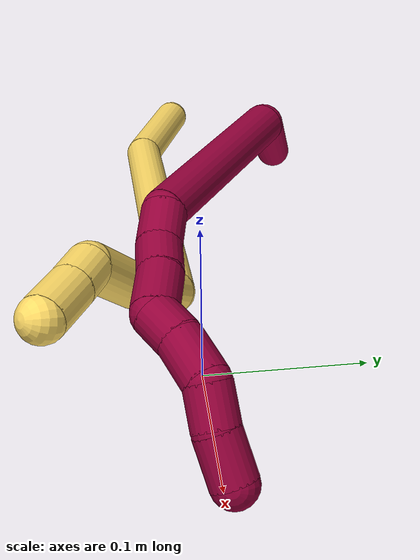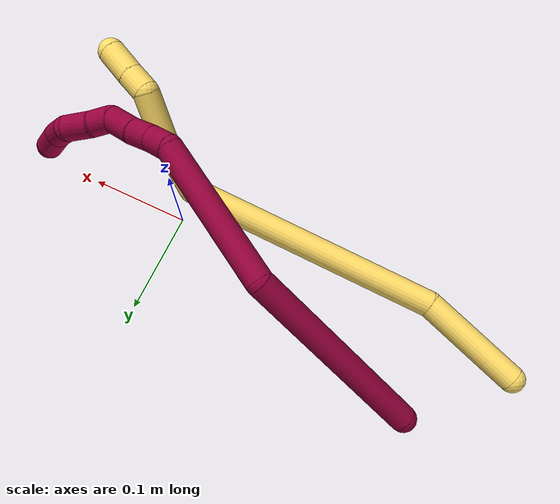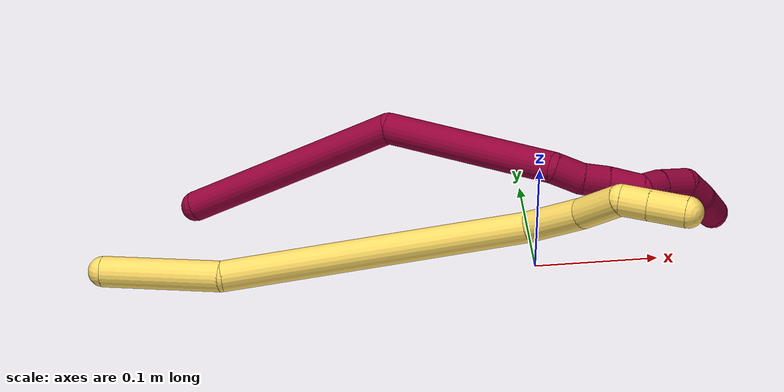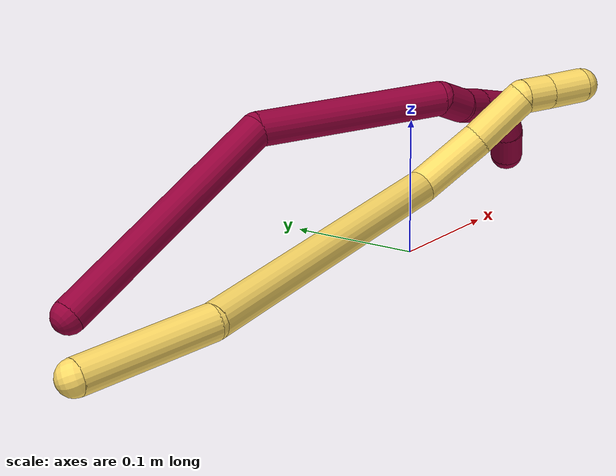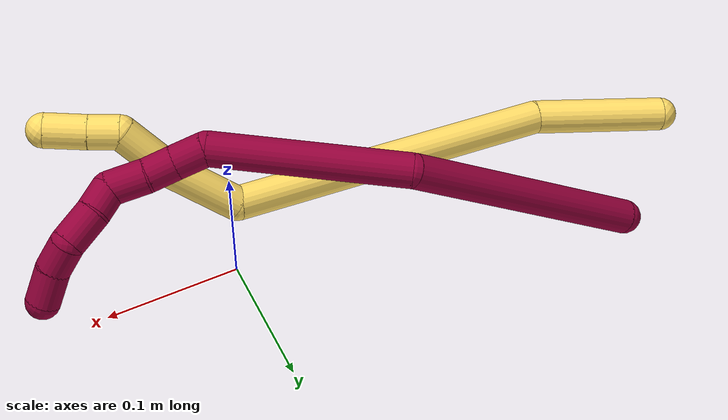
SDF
<sdf version="1.7">
 <world name="default">
  <model name="5">
   <static>0</static>
   <link name="5">
    <collision name="collision-cylinder-e_1_1_4">
     <pose>0.031778 0.002344 -0.038396 -3.08062 0.690453 -2.9724</pose>
     <geometry><cylinder><radius>0.0125</radius><length>0.099793</length></cylinder></geometry>
     <surface>
      <friction><ode><mu>1.16</mu><mu2>1.16</mu2><slip1>0</slip1><slip2>0</slip2></ode></friction>
      <contact><ode><kp>1e+06</kp><kd>1</kd><max_vel>0</max_vel><min_depth>0.001</min_depth></ode></contact>
     </surface>
    </collision>
    <visual name="visual-cylinder-e_1_1_4">
     <pose>0.031778 0.002344 -0.038396 -3.08062 0.690453 -2.9724</pose>
     <geometry><cylinder><radius>0.0125</radius><length>0.099793</length></cylinder></geometry>
     <material><ambient>1 0.858824 0.4 1</ambient></material>
    </visual>
    <collision name="collision-cylinder-e_2_4_5">
     <pose>0.166296 -0.00206 -0.145039 3.04303 0.982214 2.95767</pose>
     <geometry><cylinder><radius>0.0125</radius><length>0.247052</length></cylinder></geometry>
     <surface>
      <friction><ode><mu>1.16</mu><mu2>1.16</mu2><slip1>0</slip1><slip2>0</slip2></ode></friction>
      <contact><ode><kp>1e+06</kp><kd>1</kd><max_vel>0</max_vel><min_depth>0.001</min_depth></ode></contact>
     </surface>
    </collision>
    <visual name="visual-cylinder-e_2_4_5">
     <pose>0.166296 -0.00206 -0.145039 3.04303 0.982214 2.95767</pose>
     <geometry><cylinder><radius>0.0125</radius><length>0.247052</length></cylinder></geometry>
     <material><ambient>1 0.858824 0.4 1</ambient></material>
    </visual>
    <collision name="collision-cylinder-e_3_5_6">
     <pose>0.27729 -0.017741 -0.2381 2.79607 0.303298 1.43852</pose>
     <geometry><cylinder><radius>0.0125</radius><length>0.055269</length></cylinder></geometry>
     <surface>
      <friction><ode><mu>1.16</mu><mu2>1.16</mu2><slip1>0</slip1><slip2>0</slip2></ode></friction>
      <contact><ode><kp>1e+06</kp><kd>1</kd><max_vel>0</max_vel><min_depth>0.001</min_depth></ode></contact>
     </surface>
    </collision>
    <visual name="visual-cylinder-e_3_5_6">
     <pose>0.27729 -0.017741 -0.2381 2.79607 0.303298 1.43852</pose>
     <geometry><cylinder><radius>0.0125</radius><length>0.055269</length></cylinder></geometry>
     <material><ambient>1 0.858824 0.4 1</ambient></material>
    </visual>
    <collision name="collision-cylinder-e_4_6_7">
     <pose>0.288466 -0.035788 -0.283187 2.71906 0.130753 0.592571</pose>
     <geometry><cylinder><radius>0.0125</radius><length>0.044837</length></cylinder></geometry>
     <surface>
      <friction><ode><mu>1.16</mu><mu2>1.16</mu2><slip1>0</slip1><slip2>0</slip2></ode></friction>
      <contact><ode><kp>1e+06</kp><kd>1</kd><max_vel>0</max_vel><min_depth>0.001</min_depth></ode></contact>
     </surface>
    </collision>
    <visual name="visual-cylinder-e_4_6_7">
     <pose>0.288466 -0.035788 -0.283187 2.71906 0.130753 0.592571</pose>
     <geometry><cylinder><radius>0.0125</radius><length>0.044837</length></cylinder></geometry>
     <material><ambient>1 0.858824 0.4 1</ambient></material>
    </visual>
    <collision name="collision-cylinder-e_5_7_8">
     <pose>0.297683 -0.042993 -0.312542 -2.93441 0.595877 -2.48869</pose>
     <geometry><cylinder><radius>0.0125</radius><length>0.022428</length></cylinder></geometry>
     <surface>
      <friction><ode><mu>1.16</mu><mu2>1.16</mu2><slip1>0</slip1><slip2>0</slip2></ode></friction>
      <contact><ode><kp>1e+06</kp><kd>1</kd><max_vel>0</max_vel><min_depth>0.001</min_depth></ode></contact>
     </surface>
    </collision>
    <visual name="visual-cylinder-e_5_7_8">
     <pose>0.297683 -0.042993 -0.312542 -2.93441 0.595877 -2.48869</pose>
     <geometry><cylinder><radius>0.0125</radius><length>0.022428</length></cylinder></geometry>
     <material><ambient>1 0.858824 0.4 1</ambient></material>
    </visual>
    <collision name="collision-cylinder-e_6_8_2">
     <pose>0.31215 -0.038677 -0.334346 -2.95456 0.563152 -2.51451</pose>
     <geometry><cylinder><radius>0.0125</radius><length>0.030623</length></cylinder></geometry>
     <surface>
      <friction><ode><mu>1.16</mu><mu2>1.16</mu2><slip1>0</slip1><slip2>0</slip2></ode></friction>
      <contact><ode><kp>1e+06</kp><kd>1</kd><max_vel>0</max_vel><min_depth>0.001</min_depth></ode></contact>
     </surface>
    </collision>
    <visual name="visual-cylinder-e_6_8_2">
     <pose>0.31215 -0.038677 -0.334346 -2.95456 0.563152 -2.51451</pose>
     <geometry><cylinder><radius>0.0125</radius><length>0.030623</length></cylinder></geometry>
     <material><ambient>1 0.858824 0.4 1</ambient></material>
    </visual>
    <collision name="collision-sphere-2">
     <pose>0.320324 -0.036269 -0.347067 0 -0 0</pose>
     <geometry><sphere><radius>0.0125</radius></sphere></geometry>
     <surface>
      <friction><ode><mu>1.16</mu><mu2>1.16</mu2><slip1>0</slip1><slip2>0</slip2></ode></friction>
      <contact><ode><kp>1e+06</kp><kd>1</kd><max_vel>0</max_vel><min_depth>0.001</min_depth></ode></contact>
     </surface>
    </collision>
    <visual name="visual-sphere-2">
     <pose>0.320324 -0.036269 -0.347067 0 -0 0</pose>
     <geometry><sphere><radius>0.0125</radius></sphere></geometry>
     <material><ambient>1 0.858824 0.4 1</ambient></material>
    </visual>
    <collision name="collision-sphere-4">
     <pose>0.063557 0.004688 -0.076793 0 -0 0</pose>
     <geometry><sphere><radius>0.0125</radius></sphere></geometry>
     <surface>
      <friction><ode><mu>1.16</mu><mu2>1.16</mu2><slip1>0</slip1><slip2>0</slip2></ode></friction>
      <contact><ode><kp>1e+06</kp><kd>1</kd><max_vel>0</max_vel><min_depth>0.001</min_depth></ode></contact>
     </surface>
    </collision>
    <visual name="visual-sphere-4">
     <pose>0.063557 0.004688 -0.076793 0 -0 0</pose>
     <geometry><sphere><radius>0.0125</radius></sphere></geometry>
     <material><ambient>1 0.858824 0.4 1</ambient></material>
    </visual>
    <collision name="collision-sphere-1">
     <geometry><sphere><radius>0.0125</radius></sphere></geometry>
     <surface>
      <friction><ode><mu>1.16</mu><mu2>1.16</mu2><slip1>0</slip1><slip2>0</slip2></ode></friction>
      <contact><ode><kp>1e+06</kp><kd>1</kd><max_vel>0</max_vel><min_depth>0.001</min_depth></ode></contact>
     </surface>
    </collision>
    <visual name="visual-sphere-1">
     <geometry><sphere><radius>0.0125</radius></sphere></geometry>
     <material><ambient>1 0.858824 0.4 1</ambient></material>
    </visual>
    <collision name="collision-sphere-8">
     <pose>0.303976 -0.041084 -0.321625 0 -0 0</pose>
     <geometry><sphere><radius>0.0125</radius></sphere></geometry>
     <surface>
      <friction><ode><mu>1.16</mu><mu2>1.16</mu2><slip1>0</slip1><slip2>0</slip2></ode></friction>
      <contact><ode><kp>1e+06</kp><kd>1</kd><max_vel>0</max_vel><min_depth>0.001</min_depth></ode></contact>
     </surface>
    </collision>
    <visual name="visual-sphere-8">
     <pose>0.303976 -0.041084 -0.321625 0 -0 0</pose>
     <geometry><sphere><radius>0.0125</radius></sphere></geometry>
     <material><ambient>1 0.858824 0.4 1</ambient></material>
    </visual>
    <collision name="collision-sphere-5">
     <pose>0.269036 -0.008808 -0.213286 0 -0 0</pose>
     <geometry><sphere><radius>0.0125</radius></sphere></geometry>
     <surface>
      <friction><ode><mu>1.16</mu><mu2>1.16</mu2><slip1>0</slip1><slip2>0</slip2></ode></friction>
      <contact><ode><kp>1e+06</kp><kd>1</kd><max_vel>0</max_vel><min_depth>0.001</min_depth></ode></contact>
     </surface>
    </collision>
    <visual name="visual-sphere-5">
     <pose>0.269036 -0.008808 -0.213286 0 -0 0</pose>
     <geometry><sphere><radius>0.0125</radius></sphere></geometry>
     <material><ambient>1 0.858824 0.4 1</ambient></material>
    </visual>
    <collision name="collision-sphere-6">
     <pose>0.285543 -0.026673 -0.262914 0 -0 0</pose>
     <geometry><sphere><radius>0.0125</radius></sphere></geometry>
     <surface>
      <friction><ode><mu>1.16</mu><mu2>1.16</mu2><slip1>0</slip1><slip2>0</slip2></ode></friction>
      <contact><ode><kp>1e+06</kp><kd>1</kd><max_vel>0</max_vel><min_depth>0.001</min_depth></ode></contact>
     </surface>
    </collision>
    <visual name="visual-sphere-6">
     <pose>0.285543 -0.026673 -0.262914 0 -0 0</pose>
     <geometry><sphere><radius>0.0125</radius></sphere></geometry>
     <material><ambient>1 0.858824 0.4 1</ambient></material>
    </visual>
    <collision name="collision-sphere-7">
     <pose>0.291389 -0.044902 -0.303459 0 -0 0</pose>
     <geometry><sphere><radius>0.0125</radius></sphere></geometry>
     <surface>
      <friction><ode><mu>1.16</mu><mu2>1.16</mu2><slip1>0</slip1><slip2>0</slip2></ode></friction>
      <contact><ode><kp>1e+06</kp><kd>1</kd><max_vel>0</max_vel><min_depth>0.001</min_depth></ode></contact>
     </surface>
    </collision>
    <visual name="visual-sphere-7">
     <pose>0.291389 -0.044902 -0.303459 0 -0 0</pose>
     <geometry><sphere><radius>0.0125</radius></sphere></geometry>
     <material><ambient>1 0.858824 0.4 1</ambient></material>
    </visual>
    <inertial>
     <pose>0.177499 -0.010017 -0.165537 0 -0 0</pose>
     <mass>0.5</mass>
     <inertia>
      <ixx>-0.000591</ixx>
      <ixy>0</ixy>
      <ixz>0</ixz>
      <iyy>0.001473</iyy>
      <iyz>0</iyz>
      <izz>-0.001071</izz>
     </inertia>
    </inertial>
   </link>
   <pose>-0.349689 0.012154 0.01241 -1.91898 0.142324 0.538503</pose>
  </model>
  <model name="8">
   <static>0</static>
   <link name="8">
    <collision name="collision-cylinder-e_1_1_4">
     <pose>-0.002569 0.004612 -0.093985 -3.09257 -0.027298 1.01597</pose>
     <geometry><cylinder><radius>0.0125</radius><length>0.188266</length></cylinder></geometry>
     <surface>
      <friction><ode><mu>1.16</mu><mu2>1.16</mu2><slip1>0</slip1><slip2>0</slip2></ode></friction>
      <contact><ode><kp>1e+06</kp><kd>1</kd><max_vel>0</max_vel><min_depth>0.001</min_depth></ode></contact>
     </surface>
    </collision>
    <visual name="visual-cylinder-e_1_1_4">
     <pose>-0.002569 0.004612 -0.093985 -3.09257 -0.027298 1.01597</pose>
     <geometry><cylinder><radius>0.0125</radius><length>0.188266</length></cylinder></geometry>
     <material><ambient>0.584314 0 0.227451 1</ambient></material>
    </visual>
    <collision name="collision-cylinder-e_2_4_5">
     <pose>0.018174 -0.016966 -0.249966 2.7419 0.333462 1.38658</pose>
     <geometry><cylinder><radius>0.0125</radius><length>0.142447</length></cylinder></geometry>
     <surface>
      <friction><ode><mu>1.16</mu><mu2>1.16</mu2><slip1>0</slip1><slip2>0</slip2></ode></friction>
      <contact><ode><kp>1e+06</kp><kd>1</kd><max_vel>0</max_vel><min_depth>0.001</min_depth></ode></contact>
     </surface>
    </collision>
    <visual name="visual-cylinder-e_2_4_5">
     <pose>0.018174 -0.016966 -0.249966 2.7419 0.333462 1.38658</pose>
     <geometry><cylinder><radius>0.0125</radius><length>0.142447</length></cylinder></geometry>
     <material><ambient>0.584314 0 0.227451 1</ambient></material>
    </visual>
    <collision name="collision-cylinder-e_3_5_6">
     <pose>0.042068 -0.052273 -0.319788 2.28012 0.048341 0.105125</pose>
     <geometry><cylinder><radius>0.0125</radius><length>0.024062</length></cylinder></geometry>
     <surface>
      <friction><ode><mu>1.16</mu><mu2>1.16</mu2><slip1>0</slip1><slip2>0</slip2></ode></friction>
      <contact><ode><kp>1e+06</kp><kd>1</kd><max_vel>0</max_vel><min_depth>0.001</min_depth></ode></contact>
     </surface>
    </collision>
    <visual name="visual-cylinder-e_3_5_6">
     <pose>0.042068 -0.052273 -0.319788 2.28012 0.048341 0.105125</pose>
     <geometry><cylinder><radius>0.0125</radius><length>0.024062</length></cylinder></geometry>
     <material><ambient>0.584314 0 0.227451 1</ambient></material>
    </visual>
    <collision name="collision-cylinder-e_4_6_7">
     <pose>0.041215 -0.068157 -0.335639 2.44106 -0.135798 -0.368072</pose>
     <geometry><cylinder><radius>0.0125</radius><length>0.021187</length></cylinder></geometry>
     <surface>
      <friction><ode><mu>1.16</mu><mu2>1.16</mu2><slip1>0</slip1><slip2>0</slip2></ode></friction>
      <contact><ode><kp>1e+06</kp><kd>1</kd><max_vel>0</max_vel><min_depth>0.001</min_depth></ode></contact>
     </surface>
    </collision>
    <visual name="visual-cylinder-e_4_6_7">
     <pose>0.041215 -0.068157 -0.335639 2.44106 -0.135798 -0.368072</pose>
     <geometry><cylinder><radius>0.0125</radius><length>0.021187</length></cylinder></geometry>
     <material><ambient>0.584314 0 0.227451 1</ambient></material>
    </visual>
    <collision name="collision-cylinder-e_5_7_8">
     <pose>0.039992 -0.083884 -0.354178 2.43579 0.015302 0.041539</pose>
     <geometry><cylinder><radius>0.0125</radius><length>0.027633</length></cylinder></geometry>
     <surface>
      <friction><ode><mu>1.16</mu><mu2>1.16</mu2><slip1>0</slip1><slip2>0</slip2></ode></friction>
      <contact><ode><kp>1e+06</kp><kd>1</kd><max_vel>0</max_vel><min_depth>0.001</min_depth></ode></contact>
     </surface>
    </collision>
    <visual name="visual-cylinder-e_5_7_8">
     <pose>0.039992 -0.083884 -0.354178 2.43579 0.015302 0.041539</pose>
     <geometry><cylinder><radius>0.0125</radius><length>0.027633</length></cylinder></geometry>
     <material><ambient>0.584314 0 0.227451 1</ambient></material>
    </visual>
    <collision name="collision-cylinder-e_6_8_9">
     <pose>0.033514 -0.09879 -0.36924 2.2239 -0.729296 -1.31574</pose>
     <geometry><cylinder><radius>0.0125</radius><length>0.020078</length></cylinder></geometry>
     <surface>
      <friction><ode><mu>1.16</mu><mu2>1.16</mu2><slip1>0</slip1><slip2>0</slip2></ode></friction>
      <contact><ode><kp>1e+06</kp><kd>1</kd><max_vel>0</max_vel><min_depth>0.001</min_depth></ode></contact>
     </surface>
    </collision>
    <visual name="visual-cylinder-e_6_8_9">
     <pose>0.033514 -0.09879 -0.36924 2.2239 -0.729296 -1.31574</pose>
     <geometry><cylinder><radius>0.0125</radius><length>0.020078</length></cylinder></geometry>
     <material><ambient>0.584314 0 0.227451 1</ambient></material>
    </visual>
    <collision name="collision-cylinder-e_7_9_10">
     <pose>0.019688 -0.114107 -0.380645 2.20233 -0.551085 -1.01658</pose>
     <geometry><cylinder><radius>0.0125</radius><length>0.02726</length></cylinder></geometry>
     <surface>
      <friction><ode><mu>1.16</mu><mu2>1.16</mu2><slip1>0</slip1><slip2>0</slip2></ode></friction>
      <contact><ode><kp>1e+06</kp><kd>1</kd><max_vel>0</max_vel><min_depth>0.001</min_depth></ode></contact>
     </surface>
    </collision>
    <visual name="visual-cylinder-e_7_9_10">
     <pose>0.019688 -0.114107 -0.380645 2.20233 -0.551085 -1.01658</pose>
     <geometry><cylinder><radius>0.0125</radius><length>0.02726</length></cylinder></geometry>
     <material><ambient>0.584314 0 0.227451 1</ambient></material>
    </visual>
    <collision name="collision-cylinder-e_8_10_11">
     <pose>0.010682 -0.13451 -0.38896 1.70239 -0.166449 -0.189799</pose>
     <geometry><cylinder><radius>0.0125</radius><length>0.022564</length></cylinder></geometry>
     <surface>
      <friction><ode><mu>1.16</mu><mu2>1.16</mu2><slip1>0</slip1><slip2>0</slip2></ode></friction>
      <contact><ode><kp>1e+06</kp><kd>1</kd><max_vel>0</max_vel><min_depth>0.001</min_depth></ode></contact>
     </surface>
    </collision>
    <visual name="visual-cylinder-e_8_10_11">
     <pose>0.010682 -0.13451 -0.38896 1.70239 -0.166449 -0.189799</pose>
     <geometry><cylinder><radius>0.0125</radius><length>0.022564</length></cylinder></geometry>
     <material><ambient>0.584314 0 0.227451 1</ambient></material>
    </visual>
    <collision name="collision-cylinder-e_9_11_2">
     <pose>0.005051 -0.158241 -0.390079 1.54393 -0.287825 -0.280294</pose>
     <geometry><cylinder><radius>0.0125</radius><length>0.026503</length></cylinder></geometry>
     <surface>
      <friction><ode><mu>1.16</mu><mu2>1.16</mu2><slip1>0</slip1><slip2>0</slip2></ode></friction>
      <contact><ode><kp>1e+06</kp><kd>1</kd><max_vel>0</max_vel><min_depth>0.001</min_depth></ode></contact>
     </surface>
    </collision>
    <visual name="visual-cylinder-e_9_11_2">
     <pose>0.005051 -0.158241 -0.390079 1.54393 -0.287825 -0.280294</pose>
     <geometry><cylinder><radius>0.0125</radius><length>0.026503</length></cylinder></geometry>
     <material><ambient>0.584314 0 0.227451 1</ambient></material>
    </visual>
    <collision name="collision-sphere-2">
     <pose>0.001289 -0.170943 -0.389737 0 -0 0</pose>
     <geometry><sphere><radius>0.0125</radius></sphere></geometry>
     <surface>
      <friction><ode><mu>1.16</mu><mu2>1.16</mu2><slip1>0</slip1><slip2>0</slip2></ode></friction>
      <contact><ode><kp>1e+06</kp><kd>1</kd><max_vel>0</max_vel><min_depth>0.001</min_depth></ode></contact>
     </surface>
    </collision>
    <visual name="visual-sphere-2">
     <pose>0.001289 -0.170943 -0.389737 0 -0 0</pose>
     <geometry><sphere><radius>0.0125</radius></sphere></geometry>
     <material><ambient>0.584314 0 0.227451 1</ambient></material>
    </visual>
    <collision name="collision-sphere-11">
     <pose>0.008813 -0.14554 -0.39042 0 -0 0</pose>
     <geometry><sphere><radius>0.0125</radius></sphere></geometry>
     <surface>
      <friction><ode><mu>1.16</mu><mu2>1.16</mu2><slip1>0</slip1><slip2>0</slip2></ode></friction>
      <contact><ode><kp>1e+06</kp><kd>1</kd><max_vel>0</max_vel><min_depth>0.001</min_depth></ode></contact>
     </surface>
    </collision>
    <visual name="visual-sphere-11">
     <pose>0.008813 -0.14554 -0.39042 0 -0 0</pose>
     <geometry><sphere><radius>0.0125</radius></sphere></geometry>
     <material><ambient>0.584314 0 0.227451 1</ambient></material>
    </visual>
    <collision name="collision-sphere-10">
     <pose>0.012551 -0.123479 -0.3875 0 -0 0</pose>
     <geometry><sphere><radius>0.0125</radius></sphere></geometry>
     <surface>
      <friction><ode><mu>1.16</mu><mu2>1.16</mu2><slip1>0</slip1><slip2>0</slip2></ode></friction>
      <contact><ode><kp>1e+06</kp><kd>1</kd><max_vel>0</max_vel><min_depth>0.001</min_depth></ode></contact>
     </surface>
    </collision>
    <visual name="visual-sphere-10">
     <pose>0.012551 -0.123479 -0.3875 0 -0 0</pose>
     <geometry><sphere><radius>0.0125</radius></sphere></geometry>
     <material><ambient>0.584314 0 0.227451 1</ambient></material>
    </visual>
    <collision name="collision-sphere-9">
     <pose>0.026825 -0.104735 -0.373789 0 -0 0</pose>
     <geometry><sphere><radius>0.0125</radius></sphere></geometry>
     <surface>
      <friction><ode><mu>1.16</mu><mu2>1.16</mu2><slip1>0</slip1><slip2>0</slip2></ode></friction>
      <contact><ode><kp>1e+06</kp><kd>1</kd><max_vel>0</max_vel><min_depth>0.001</min_depth></ode></contact>
     </surface>
    </collision>
    <visual name="visual-sphere-9">
     <pose>0.026825 -0.104735 -0.373789 0 -0 0</pose>
     <geometry><sphere><radius>0.0125</radius></sphere></geometry>
     <material><ambient>0.584314 0 0.227451 1</ambient></material>
    </visual>
    <collision name="collision-sphere-4">
     <pose>-0.005139 0.009223 -0.18797 0 -0 0</pose>
     <geometry><sphere><radius>0.0125</radius></sphere></geometry>
     <surface>
      <friction><ode><mu>1.16</mu><mu2>1.16</mu2><slip1>0</slip1><slip2>0</slip2></ode></friction>
      <contact><ode><kp>1e+06</kp><kd>1</kd><max_vel>0</max_vel><min_depth>0.001</min_depth></ode></contact>
     </surface>
    </collision>
    <visual name="visual-sphere-4">
     <pose>-0.005139 0.009223 -0.18797 0 -0 0</pose>
     <geometry><sphere><radius>0.0125</radius></sphere></geometry>
     <material><ambient>0.584314 0 0.227451 1</ambient></material>
    </visual>
    <collision name="collision-sphere-1">
     <geometry><sphere><radius>0.0125</radius></sphere></geometry>
     <surface>
      <friction><ode><mu>1.16</mu><mu2>1.16</mu2><slip1>0</slip1><slip2>0</slip2></ode></friction>
      <contact><ode><kp>1e+06</kp><kd>1</kd><max_vel>0</max_vel><min_depth>0.001</min_depth></ode></contact>
     </surface>
    </collision>
    <visual name="visual-sphere-1">
     <geometry><sphere><radius>0.0125</radius></sphere></geometry>
     <material><ambient>0.584314 0 0.227451 1</ambient></material>
    </visual>
    <collision name="collision-sphere-8">
     <pose>0.040204 -0.092845 -0.364692 0 -0 0</pose>
     <geometry><sphere><radius>0.0125</radius></sphere></geometry>
     <surface>
      <friction><ode><mu>1.16</mu><mu2>1.16</mu2><slip1>0</slip1><slip2>0</slip2></ode></friction>
      <contact><ode><kp>1e+06</kp><kd>1</kd><max_vel>0</max_vel><min_depth>0.001</min_depth></ode></contact>
     </surface>
    </collision>
    <visual name="visual-sphere-8">
     <pose>0.040204 -0.092845 -0.364692 0 -0 0</pose>
     <geometry><sphere><radius>0.0125</radius></sphere></geometry>
     <material><ambient>0.584314 0 0.227451 1</ambient></material>
    </visual>
    <collision name="collision-sphere-5">
     <pose>0.041487 -0.043154 -0.311961 0 -0 0</pose>
     <geometry><sphere><radius>0.0125</radius></sphere></geometry>
     <surface>
      <friction><ode><mu>1.16</mu><mu2>1.16</mu2><slip1>0</slip1><slip2>0</slip2></ode></friction>
      <contact><ode><kp>1e+06</kp><kd>1</kd><max_vel>0</max_vel><min_depth>0.001</min_depth></ode></contact>
     </surface>
    </collision>
    <visual name="visual-sphere-5">
     <pose>0.041487 -0.043154 -0.311961 0 -0 0</pose>
     <geometry><sphere><radius>0.0125</radius></sphere></geometry>
     <material><ambient>0.584314 0 0.227451 1</ambient></material>
    </visual>
    <collision name="collision-sphere-6">
     <pose>0.042649 -0.061391 -0.327615 0 -0 0</pose>
     <geometry><sphere><radius>0.0125</radius></sphere></geometry>
     <surface>
      <friction><ode><mu>1.16</mu><mu2>1.16</mu2><slip1>0</slip1><slip2>0</slip2></ode></friction>
      <contact><ode><kp>1e+06</kp><kd>1</kd><max_vel>0</max_vel><min_depth>0.001</min_depth></ode></contact>
     </surface>
    </collision>
    <visual name="visual-sphere-6">
     <pose>0.042649 -0.061391 -0.327615 0 -0 0</pose>
     <geometry><sphere><radius>0.0125</radius></sphere></geometry>
     <material><ambient>0.584314 0 0.227451 1</ambient></material>
    </visual>
    <collision name="collision-sphere-7">
     <pose>0.039781 -0.074923 -0.343663 0 -0 0</pose>
     <geometry><sphere><radius>0.0125</radius></sphere></geometry>
     <surface>
      <friction><ode><mu>1.16</mu><mu2>1.16</mu2><slip1>0</slip1><slip2>0</slip2></ode></friction>
      <contact><ode><kp>1e+06</kp><kd>1</kd><max_vel>0</max_vel><min_depth>0.001</min_depth></ode></contact>
     </surface>
    </collision>
    <visual name="visual-sphere-7">
     <pose>0.039781 -0.074923 -0.343663 0 -0 0</pose>
     <geometry><sphere><radius>0.0125</radius></sphere></geometry>
     <material><ambient>0.584314 0 0.227451 1</ambient></material>
    </visual>
    <inertial>
     <pose>0.01336 -0.037783 -0.229597 0 -0 0</pose>
     <mass>0.5</mass>
     <inertia>
      <ixx>0.001055</ixx>
      <ixy>0</ixy>
      <ixz>0</ixz>
      <iyy>0.00038</iyy>
      <iyz>0</iyz>
      <izz>-1.8e-05</izz>
     </inertia>
    </inertial>
   </link>
   <pose>-0.272706 0.087676 0.012577 2.06044 0.078856 -1.77</pose>
  </model>
 </world>
</sdf>
